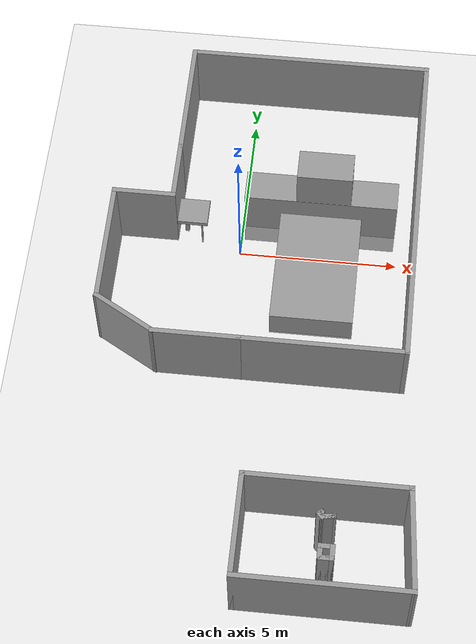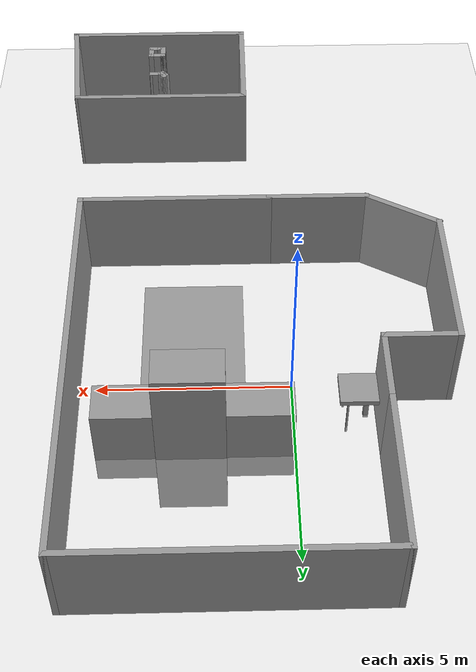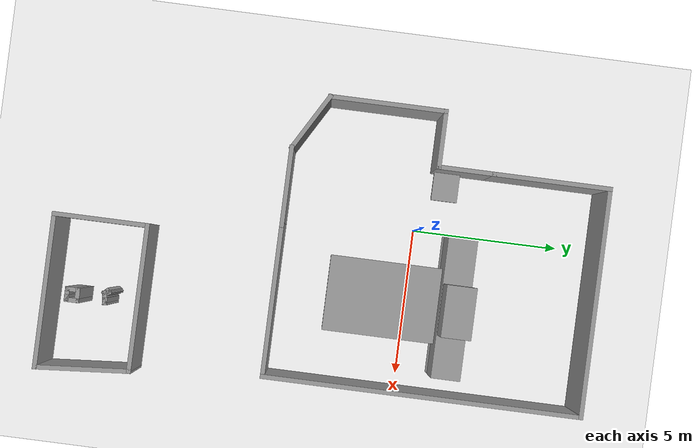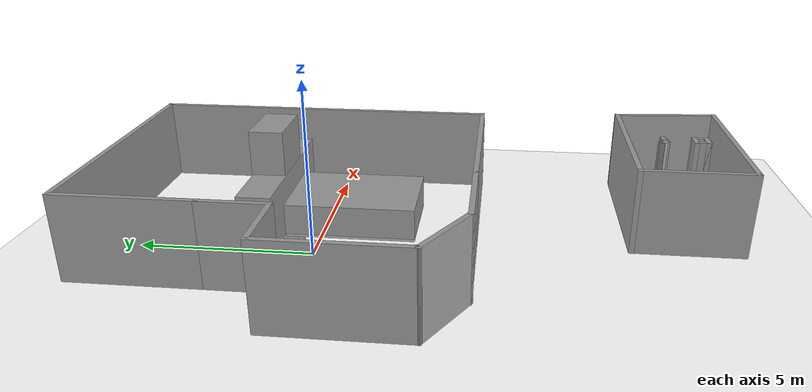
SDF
<sdf version="1.6">
 <world name="default">
  <light name="sun" type="directional">
   <pose>0 0 10 0 -0 0</pose>
   <diffuse>0.8 0.8 0.8 1</diffuse>
   <specular>0.2 0.2 0.2 1</specular>
   <attenuation>
    <range>1000</range>
    <constant>0.9</constant>
    <linear>0.01</linear>
    <quadratic>0.001</quadratic>
   </attenuation>
   <direction>-0.5 0.1 -0.9</direction>
  </light>
  <model name="ground_plane">
   <static>1</static>
   <link name="link">
    <collision name="collision">
     <geometry><plane><normal>0 0 1</normal><size>100 100</size></plane></geometry>
     <surface>
      <contact><collide_bitmask>65535</collide_bitmask></contact>
      <friction><ode><mu>100</mu><mu2>50</mu2></ode></friction>
     </surface>
    </collision>
    <visual name="visual">
     <cast_shadows>0</cast_shadows>
     <geometry><plane><normal>0 0 1</normal><size>100 100</size></plane></geometry>
     <material>
      <script><uri>file://media/materials/scripts/gazebo.material</uri><name>Gazebo/Grey</name></script>
     </material>
    </visual>
   </link>
  </model>
  <gravity>0 0 -9.8</gravity>
  <magnetic_field>6e-06 2.3e-05 -4.2e-05</magnetic_field>
  <atmosphere type="adiabatic"/>
  <physics name="default_physics" default="0" type="ode">
   <max_step_size>0.001</max_step_size>
   <real_time_factor>1</real_time_factor>
   <real_time_update_rate>1000</real_time_update_rate>
  </physics>
  <scene><ambient>0.4 0.4 0.4 1</ambient><background>0.7 0.7 0.7 1</background><shadows>1</shadows></scene>
  <spherical_coordinates>
   <surface_model>EARTH_WGS84</surface_model>
   <latitude_deg>0</latitude_deg>
   <longitude_deg>0</longitude_deg>
   <elevation>0</elevation>
   <heading_deg>0</heading_deg>
  </spherical_coordinates>
  <model name="sote_1.3">
   <link name="link_0">
    <inertial>
     <mass>0.016659</mass>
     <inertia>
      <ixx>0.00141362</ixx>
      <ixy>0</ixy>
      <ixz>0</ixz>
      <iyy>0.00140935</iyy>
      <iyz>0</iyz>
      <izz>4.647e-05</izz>
     </inertia>
    </inertial>
    <pose>-2.02582 0.010247 -0.068862 0 -0 0</pose>
    <self_collide>1</self_collide>
    <visual name="visual">
     <geometry><box><size>0.123282 0.135197 1</size></box></geometry>
     <material>
      <lighting>1</lighting>
      <script><uri>file://media/materials/scripts/gazebo.material</uri><name>Gazebo/Grey</name></script>
      <shader type="pixel"><normal_map>__default__</normal_map></shader>
      <emissive>0 0 0 1</emissive>
     </material>
    </visual>
    <collision name="collision">
     <geometry><box><size>0.123282 0.135197 1</size></box></geometry>
     <surface>
      <friction>
       <ode><mu>1</mu><mu2>1</mu2><fdir1>0 0 0</fdir1><slip1>0</slip1><slip2>0</slip2></ode>
       <torsional>
        <coefficient>1</coefficient>
        <patch_radius>0</patch_radius>
        <surface_radius>0</surface_radius>
        <use_patch_radius>1</use_patch_radius>
        <ode><slip>0</slip></ode>
       </torsional>
      </friction>
      <bounce><restitution_coefficient>0</restitution_coefficient><threshold>1e+06</threshold></bounce>
      <contact>
       <collide_without_contact>0</collide_without_contact>
       <collide_without_contact_bitmask>1</collide_without_contact_bitmask>
       <collide_bitmask>1</collide_bitmask>
       <ode>
        <soft_cfm>0</soft_cfm>
        <soft_erp>0.2</soft_erp>
        <kp>1e+13</kp>
        <kd>1</kd>
        <max_vel>0.01</max_vel>
        <min_depth>0</min_depth>
       </ode>
       <bullet>
        <split_impulse>1</split_impulse>
        <split_impulse_penetration_threshold>-0.01</split_impulse_penetration_threshold>
        <soft_cfm>0</soft_cfm>
        <soft_erp>0.2</soft_erp>
        <kp>1e+13</kp>
        <kd>1</kd>
       </bullet>
      </contact>
     </surface>
    </collision>
   </link>
   <link name="link_1">
    <inertial>
     <mass>0.133394</mass>
     <inertia>
      <ixx>0.00891643</ixx>
      <ixy>0</ixy>
      <ixz>0</ixz>
      <iyy>0.0115167</iyy>
      <iyz>0</iyz>
      <izz>0.0199326</izz>
     </inertia>
    </inertial>
    <pose>-1.81446 -0.00208 0.474498 0 -0 0</pose>
    <self_collide>1</self_collide>
    <visual name="visual">
     <geometry><box><size>1.00673 0.88295 0.15004</size></box></geometry>
     <material>
      <lighting>1</lighting>
      <script><uri>file://media/materials/scripts/gazebo.material</uri><name>Gazebo/Grey</name></script>
      <shader type="pixel"><normal_map>__default__</normal_map></shader>
      <emissive>0 0 0 1</emissive>
     </material>
    </visual>
    <collision name="collision">
     <geometry><box><size>1.00673 0.88295 0.15004</size></box></geometry>
     <surface>
      <friction>
       <ode><mu>1</mu><mu2>1</mu2><fdir1>0 0 0</fdir1><slip1>0</slip1><slip2>0</slip2></ode>
       <torsional>
        <coefficient>1</coefficient>
        <patch_radius>0</patch_radius>
        <surface_radius>0</surface_radius>
        <use_patch_radius>1</use_patch_radius>
        <ode><slip>0</slip></ode>
       </torsional>
      </friction>
      <bounce><restitution_coefficient>0</restitution_coefficient><threshold>1e+06</threshold></bounce>
      <contact>
       <collide_without_contact>0</collide_without_contact>
       <collide_without_contact_bitmask>1</collide_without_contact_bitmask>
       <collide_bitmask>1</collide_bitmask>
       <ode>
        <soft_cfm>0</soft_cfm>
        <soft_erp>0.2</soft_erp>
        <kp>1e+13</kp>
        <kd>1</kd>
        <max_vel>0.01</max_vel>
        <min_depth>0</min_depth>
       </ode>
       <bullet>
        <split_impulse>1</split_impulse>
        <split_impulse_penetration_threshold>-0.01</split_impulse_penetration_threshold>
        <soft_cfm>0</soft_cfm>
        <soft_erp>0.2</soft_erp>
        <kp>1e+13</kp>
        <kd>1</kd>
       </bullet>
      </contact>
     </surface>
    </collision>
   </link>
   <link name="link_2">
    <inertial>
     <mass>0.00298862</mass>
     <inertia>
      <ixx>0.00032573</ixx>
      <ixy>0</ixy>
      <ixz>0</ixz>
      <iyy>0.00032565</iyy>
      <iyz>0</iyz>
      <izz>1.3e-06</izz>
     </inertia>
    </inertial>
    <pose>-1.4954 -0.345618 -0.097495 0 -0 0</pose>
    <self_collide>1</self_collide>
    <visual name="visual">
     <geometry><box><size>0.049647 0.052664 1.14241</size></box></geometry>
     <material>
      <lighting>1</lighting>
      <script><uri>file://media/materials/scripts/gazebo.material</uri><name>Gazebo/Grey</name></script>
      <shader type="pixel"><normal_map>__default__</normal_map></shader>
      <emissive>0 0 0 1</emissive>
     </material>
    </visual>
    <collision name="collision">
     <geometry><box><size>0.049647 0.052664 1.14241</size></box></geometry>
     <surface>
      <friction>
       <ode><mu>1</mu><mu2>1</mu2><fdir1>0 0 0</fdir1><slip1>0</slip1><slip2>0</slip2></ode>
       <torsional>
        <coefficient>1</coefficient>
        <patch_radius>0</patch_radius>
        <surface_radius>0</surface_radius>
        <use_patch_radius>1</use_patch_radius>
        <ode><slip>0</slip></ode>
       </torsional>
      </friction>
      <bounce><restitution_coefficient>0</restitution_coefficient><threshold>1e+06</threshold></bounce>
      <contact>
       <collide_without_contact>0</collide_without_contact>
       <collide_without_contact_bitmask>1</collide_without_contact_bitmask>
       <collide_bitmask>1</collide_bitmask>
       <ode>
        <soft_cfm>0</soft_cfm>
        <soft_erp>0.2</soft_erp>
        <kp>1e+13</kp>
        <kd>1</kd>
        <max_vel>0.01</max_vel>
        <min_depth>0</min_depth>
       </ode>
       <bullet>
        <split_impulse>1</split_impulse>
        <split_impulse_penetration_threshold>-0.01</split_impulse_penetration_threshold>
        <soft_cfm>0</soft_cfm>
        <soft_erp>0.2</soft_erp>
        <kp>1e+13</kp>
        <kd>1</kd>
       </bullet>
      </contact>
     </surface>
    </collision>
   </link>
   <link name="link_2_clone">
    <inertial>
     <mass>0.00304918</mass>
     <inertia>
      <ixx>0.00034641</ixx>
      <ixy>0</ixy>
      <ixz>0</ixz>
      <iyy>0.00034634</iyy>
      <iyz>0</iyz>
      <izz>1.33e-06</izz>
     </inertia>
    </inertial>
    <pose>-1.51668 0.402224 -0.101554 0 -0 0</pose>
    <self_collide>1</self_collide>
    <visual name="visual">
     <geometry><box><size>0.049647 0.052664 1.16642</size></box></geometry>
     <material>
      <lighting>1</lighting>
      <script><uri>file://media/materials/scripts/gazebo.material</uri><name>Gazebo/Grey</name></script>
      <shader type="pixel"><normal_map>__default__</normal_map></shader>
      <emissive>0 0 0 1</emissive>
     </material>
    </visual>
    <collision name="collision">
     <geometry><box><size>0.049647 0.052664 1.16642</size></box></geometry>
     <surface>
      <friction>
       <ode><mu>1</mu><mu2>1</mu2><fdir1>0 0 0</fdir1><slip1>0</slip1><slip2>0</slip2></ode>
       <torsional>
        <coefficient>1</coefficient>
        <patch_radius>0</patch_radius>
        <surface_radius>0</surface_radius>
        <use_patch_radius>1</use_patch_radius>
        <ode><slip>0</slip></ode>
       </torsional>
      </friction>
      <bounce><restitution_coefficient>0</restitution_coefficient><threshold>1e+06</threshold></bounce>
      <contact>
       <collide_without_contact>0</collide_without_contact>
       <collide_without_contact_bitmask>1</collide_without_contact_bitmask>
       <collide_bitmask>1</collide_bitmask>
       <ode>
        <soft_cfm>0</soft_cfm>
        <soft_erp>0.2</soft_erp>
        <kp>1e+13</kp>
        <kd>1</kd>
        <max_vel>0.01</max_vel>
        <min_depth>0</min_depth>
       </ode>
       <bullet>
        <split_impulse>1</split_impulse>
        <split_impulse_penetration_threshold>-0.01</split_impulse_penetration_threshold>
        <soft_cfm>0</soft_cfm>
        <soft_erp>0.2</soft_erp>
        <kp>1e+13</kp>
        <kd>1</kd>
       </bullet>
      </contact>
     </surface>
    </collision>
   </link>
   <link name="link_3">
    <inertial>
     <mass>11.9259</mass>
     <inertia><ixx>6.99132</ixx><ixy>0</ixy><ixz>0</ixz><iyy>29.4194</iyy><iyz>0</iyz><izz>24.4157</izz></inertia>
    </inertial>
    <pose>2.2438 0.767971 -0.068862 0 -0 0</pose>
    <visual name="visual">
     <geometry><box><size>4.85463 1 2.45658</size></box></geometry>
     <material>
      <lighting>1</lighting>
      <script><uri>file://media/materials/scripts/gazebo.material</uri><name>Gazebo/Grey</name></script>
      <shader type="pixel"/>
     </material>
    </visual>
    <collision name="collision">
     <geometry><box><size>4.85463 1 2.45658</size></box></geometry>
     <surface>
      <friction>
       <ode><mu>1</mu><mu2>1</mu2><fdir1>0 0 0</fdir1><slip1>0</slip1><slip2>0</slip2></ode>
       <torsional>
        <coefficient>1</coefficient>
        <patch_radius>0</patch_radius>
        <surface_radius>0</surface_radius>
        <use_patch_radius>1</use_patch_radius>
        <ode><slip>0</slip></ode>
       </torsional>
      </friction>
      <bounce><restitution_coefficient>0</restitution_coefficient><threshold>1e+06</threshold></bounce>
      <contact>
       <collide_without_contact>0</collide_without_contact>
       <collide_without_contact_bitmask>1</collide_without_contact_bitmask>
       <collide_bitmask>1</collide_bitmask>
       <ode>
        <soft_cfm>0</soft_cfm>
        <soft_erp>0.2</soft_erp>
        <kp>1e+13</kp>
        <kd>1</kd>
        <max_vel>0.01</max_vel>
        <min_depth>0</min_depth>
       </ode>
       <bullet>
        <split_impulse>1</split_impulse>
        <split_impulse_penetration_threshold>-0.01</split_impulse_penetration_threshold>
        <soft_cfm>0</soft_cfm>
        <soft_erp>0.2</soft_erp>
        <kp>1e+13</kp>
        <kd>1</kd>
       </bullet>
      </contact>
     </surface>
    </collision>
   </link>
   <link name="link_4">
    <inertial>
     <mass>8.84152</mass>
     <inertia><ixx>19.8918</ixx><ixy>0</ixy><ixz>0</ixz><iyy>21.3705</iyy><iyz>0</iyz><izz>2.95229</izz></inertia>
    </inertial>
    <pose>2.33451 0.794438 -0.068862 0 -0 0</pose>
    <visual name="visual">
     <geometry><box><size>1.73405 1 5.0988</size></box></geometry>
     <material>
      <lighting>1</lighting>
      <script><uri>file://media/materials/scripts/gazebo.material</uri><name>Gazebo/Grey</name></script>
      <shader type="pixel"/>
     </material>
    </visual>
    <collision name="collision">
     <geometry><box><size>1.73405 1 5.0988</size></box></geometry>
     <surface>
      <friction>
       <ode><mu>1</mu><mu2>1</mu2><fdir1>0 0 0</fdir1><slip1>0</slip1><slip2>0</slip2></ode>
       <torsional>
        <coefficient>1</coefficient>
        <patch_radius>0</patch_radius>
        <surface_radius>0</surface_radius>
        <use_patch_radius>1</use_patch_radius>
        <ode><slip>0</slip></ode>
       </torsional>
      </friction>
      <bounce><restitution_coefficient>0</restitution_coefficient><threshold>1e+06</threshold></bounce>
      <contact>
       <collide_without_contact>0</collide_without_contact>
       <collide_without_contact_bitmask>1</collide_without_contact_bitmask>
       <collide_bitmask>1</collide_bitmask>
       <ode>
        <soft_cfm>0</soft_cfm>
        <soft_erp>0.2</soft_erp>
        <kp>1e+13</kp>
        <kd>1</kd>
        <max_vel>0.01</max_vel>
        <min_depth>0</min_depth>
       </ode>
       <bullet>
        <split_impulse>1</split_impulse>
        <split_impulse_penetration_threshold>-0.01</split_impulse_penetration_threshold>
        <soft_cfm>0</soft_cfm>
        <soft_erp>0.2</soft_erp>
        <kp>1e+13</kp>
        <kd>1</kd>
       </bullet>
      </contact>
     </surface>
    </collision>
   </link>
   <link name="link_5">
    <inertial>
     <mass>10.0896</mass>
     <inertia><ixx>13.5916</ixx><ixy>0</ixy><ixz>0</ixz><iyy>6.48448</iyy><iyz>0</iyz><izz>18.3945</izz></inertia>
    </inertial>
    <pose>2.27405 -1.62718 -0.068862 0 -0 0</pose>
    <visual name="visual">
     <geometry><box><size>2.59081 3.89424 1</size></box></geometry>
     <material>
      <lighting>1</lighting>
      <script><uri>file://media/materials/scripts/gazebo.material</uri><name>Gazebo/Grey</name></script>
      <shader type="pixel"/>
     </material>
    </visual>
    <collision name="collision">
     <geometry><box><size>2.59081 3.89424 1</size></box></geometry>
     <surface>
      <friction>
       <ode><mu>1</mu><mu2>1</mu2><fdir1>0 0 0</fdir1><slip1>0</slip1><slip2>0</slip2></ode>
       <torsional>
        <coefficient>1</coefficient>
        <patch_radius>0</patch_radius>
        <surface_radius>0</surface_radius>
        <use_patch_radius>1</use_patch_radius>
        <ode><slip>0</slip></ode>
       </torsional>
      </friction>
      <bounce><restitution_coefficient>0</restitution_coefficient><threshold>1e+06</threshold></bounce>
      <contact>
       <collide_without_contact>0</collide_without_contact>
       <collide_without_contact_bitmask>1</collide_without_contact_bitmask>
       <collide_bitmask>1</collide_bitmask>
       <ode>
        <soft_cfm>0</soft_cfm>
        <soft_erp>0.2</soft_erp>
        <kp>1e+13</kp>
        <kd>1</kd>
        <max_vel>0.01</max_vel>
        <min_depth>0</min_depth>
       </ode>
       <bullet>
        <split_impulse>1</split_impulse>
        <split_impulse_penetration_threshold>-0.01</split_impulse_penetration_threshold>
        <soft_cfm>0</soft_cfm>
        <soft_erp>0.2</soft_erp>
        <kp>1e+13</kp>
        <kd>1</kd>
       </bullet>
      </contact>
     </surface>
    </collision>
   </link>
   <joint name="link_1_JOINT_0" type="fixed">
    <parent>link_1</parent>
    <child>link_0</child>
    <physics>
     <ode><limit><cfm>0</cfm><erp>0.2</erp></limit><suspension><cfm>0</cfm><erp>0.2</erp></suspension></ode>
    </physics>
   </joint>
   <joint name="link_1_JOINT_1" type="fixed">
    <parent>link_1</parent>
    <child>link_2</child>
    <physics>
     <ode><limit><cfm>0</cfm><erp>0.2</erp></limit><suspension><cfm>0</cfm><erp>0.2</erp></suspension></ode>
    </physics>
   </joint>
   <joint name="link_1_JOINT_2" type="fixed">
    <parent>link_1</parent>
    <child>link_2_clone</child>
    <physics>
     <ode><limit><cfm>0</cfm><erp>0.2</erp></limit><suspension><cfm>0</cfm><erp>0.2</erp></suspension></ode>
    </physics>
   </joint>
   <static>0</static>
   <pose>0.21653 0.841785 0.467495 0 -0 0</pose>
  </model>
  <model name="Korhaz_1">
   <pose>1.06574 -2.93788 0 0 -0 0</pose>
   <link name="Wall_20">
    <collision name="Wall_20_Collision">
     <geometry><box><size>2.75 0.15 2.5</size></box></geometry>
     <pose>0 0 1.25 0 -0 0</pose>
    </collision>
    <visual name="Wall_20_Visual">
     <pose>0 0 1.25 0 -0 0</pose>
     <geometry><box><size>2.75 0.15 2.5</size></box></geometry>
     <material>
      <script><uri>file://media/materials/scripts/gazebo.material</uri><name>Gazebo/Grey</name></script>
      <ambient>1 1 1 1</ambient>
     </material>
     <meta><layer>0</layer></meta>
    </visual>
    <pose>-1.91983 -1.54931 0 0 -0 3.14159</pose>
   </link>
   <link name="Wall_21">
    <collision name="Wall_21_Collision">
     <geometry><box><size>2.25 0.15 2.5</size></box></geometry>
     <pose>0 0 1.25 0 -0 0</pose>
    </collision>
    <visual name="Wall_21_Visual">
     <pose>0 0 1.25 0 -0 0</pose>
     <geometry><box><size>2.25 0.15 2.5</size></box></geometry>
     <material>
      <script><uri>file://media/materials/scripts/gazebo.material</uri><name>Gazebo/Grey</name></script>
      <ambient>1 1 1 1</ambient>
     </material>
     <meta><layer>0</layer></meta>
    </visual>
    <pose>-4.12915 -1.02432 0 0 -0 2.61799</pose>
   </link>
   <link name="Wall_24">
    <collision name="Wall_24_Collision">
     <geometry><box><size>4 0.15 2.5</size></box></geometry>
     <pose>0 0 1.25 0 -0 0</pose>
    </collision>
    <visual name="Wall_24_Visual">
     <pose>0 0 1.25 0 -0 0</pose>
     <geometry><box><size>4 0.15 2.5</size></box></geometry>
     <material>
      <script><uri>file://media/materials/scripts/gazebo.material</uri><name>Gazebo/Grey</name></script>
      <ambient>1 1 1 1</ambient>
     </material>
     <meta><layer>0</layer></meta>
    </visual>
    <pose>-5.03848 1.42569 0 0 -0 1.5708</pose>
   </link>
   <link name="Wall_26">
    <collision name="Wall_26_Collision">
     <geometry><box><size>2 0.15 2.5</size></box></geometry>
     <pose>0 0 1.25 0 -0 0</pose>
    </collision>
    <visual name="Wall_26_Visual">
     <pose>0 0 1.25 0 -0 0</pose>
     <geometry><box><size>2 0.15 2.5</size></box></geometry>
     <material>
      <script><uri>file://media/materials/scripts/gazebo.material</uri><name>Gazebo/Grey</name></script>
      <ambient>1 1 1 1</ambient>
     </material>
     <meta><layer>0</layer></meta>
    </visual>
    <pose>-4.11348 3.35068 0 0 -0 0</pose>
   </link>
   <link name="Wall_27">
    <collision name="Wall_27_Collision">
     <geometry><box><size>2 0.15 2.5</size></box></geometry>
     <pose>0 0 1.25 0 -0 0</pose>
    </collision>
    <visual name="Wall_27_Visual">
     <pose>0 0 1.25 0 -0 0</pose>
     <geometry><box><size>2 0.15 2.5</size></box></geometry>
     <material>
      <script><uri>file://media/materials/scripts/gazebo.material</uri><name>Gazebo/Grey</name></script>
      <ambient>1 1 1 1</ambient>
     </material>
     <meta><layer>0</layer></meta>
    </visual>
    <pose>-3.18848 4.27569 0 0 -0 1.5708</pose>
   </link>
   <link name="Wall_29">
    <collision name="Wall_29_Collision">
     <geometry><box><size>4 0.15 2.5</size></box></geometry>
     <pose>0 0 1.25 0 -0 0</pose>
    </collision>
    <visual name="Wall_29_Visual">
     <pose>0 0 1.25 0 -0 0</pose>
     <geometry><box><size>4 0.15 2.5</size></box></geometry>
     <material>
      <script><uri>file://media/materials/scripts/gazebo.material</uri><name>Gazebo/Grey</name></script>
      <ambient>1 1 1 1</ambient>
     </material>
     <meta><layer>0</layer></meta>
    </visual>
    <pose>-3.18848 7.12568 0 0 -0 1.5708</pose>
   </link>
   <link name="Wall_30">
    <collision name="Wall_30_Collision">
     <geometry><box><size>7.75 0.15 2.5</size></box></geometry>
     <pose>0 0 1.25 0 -0 0</pose>
    </collision>
    <visual name="Wall_30_Visual">
     <pose>0 0 1.25 0 -0 0</pose>
     <geometry><box><size>7.75 0.15 2.5</size></box></geometry>
     <material>
      <script><uri>file://media/materials/scripts/gazebo.material</uri><name>Gazebo/Grey</name></script>
      <ambient>1 1 1 1</ambient>
     </material>
     <meta><layer>0</layer></meta>
    </visual>
    <pose>0.61152 9.05068 0 0 -0 0</pose>
   </link>
   <link name="Wall_31">
    <collision name="Wall_31_Collision">
     <geometry><box><size>10.75 0.15 2.5</size></box></geometry>
     <pose>0 0 1.25 0 -0 0</pose>
    </collision>
    <visual name="Wall_31_Visual">
     <pose>0 0 1.25 0 -0 0</pose>
     <geometry><box><size>10.75 0.15 2.5</size></box></geometry>
     <material>
      <script><uri>file://media/materials/scripts/gazebo.material</uri><name>Gazebo/Grey</name></script>
      <ambient>1 1 1 1</ambient>
     </material>
     <meta><layer>0</layer></meta>
    </visual>
    <pose>4.41152 3.75068 0 0 -0 -1.5708</pose>
   </link>
   <link name="Wall_32">
    <collision name="Wall_32_Collision">
     <geometry><box><size>5.18135 0.15 2.5</size></box></geometry>
     <pose>0 0 1.25 0 -0 0</pose>
    </collision>
    <visual name="Wall_32_Visual">
     <pose>0 0 1.25 0 -0 0</pose>
     <geometry><box><size>5.18135 0.15 2.5</size></box></geometry>
     <material>
      <script><uri>file://media/materials/scripts/gazebo.material</uri><name>Gazebo/Grey</name></script>
      <ambient>1 1 1 1</ambient>
     </material>
     <meta><layer>0</layer></meta>
    </visual>
    <pose>1.89585 -1.54931 0 0 -0 3.14159</pose>
   </link>
   <link name="Wall_34">
    <collision name="Wall_34_Collision">
     <geometry><box><size>5 0.15 2.5</size></box></geometry>
     <pose>0 0 1.25 0 -0 0</pose>
    </collision>
    <visual name="Wall_34_Visual">
     <pose>0 0 1.25 0 -0 0</pose>
     <geometry><box><size>5 0.15 2.5</size></box></geometry>
     <material>
      <script><uri>file://media/materials/scripts/gazebo.material</uri><name>Gazebo/Grey</name></script>
      <ambient>1 1 1 1</ambient>
     </material>
     <meta><layer>0</layer></meta>
    </visual>
    <pose>2.38515 -5.9449 0 0 -0 3.14159</pose>
   </link>
   <link name="Wall_36">
    <collision name="Wall_36_Collision">
     <geometry><box><size>3.25 0.15 2.5</size></box></geometry>
     <pose>0 0 1.25 0 -0 0</pose>
    </collision>
    <visual name="Wall_36_Visual">
     <pose>0 0 1.25 0 -0 0</pose>
     <geometry><box><size>3.25 0.15 2.5</size></box></geometry>
     <material>
      <script><uri>file://media/materials/scripts/gazebo.material</uri><name>Gazebo/Grey</name></script>
      <ambient>1 1 1 1</ambient>
     </material>
     <meta><layer>0</layer></meta>
    </visual>
    <pose>-0.039854 -7.4949 0 0 -0 -1.5708</pose>
   </link>
   <link name="Wall_38">
    <collision name="Wall_38_Collision">
     <geometry><box><size>5.25 0.15 2.5</size></box></geometry>
     <pose>0 0 1.25 0 -0 0</pose>
    </collision>
    <visual name="Wall_38_Visual">
     <pose>0 0 1.25 0 -0 0</pose>
     <geometry><box><size>5.25 0.15 2.5</size></box></geometry>
     <material>
      <script><uri>file://media/materials/scripts/gazebo.material</uri><name>Gazebo/Grey</name></script>
      <ambient>1 1 1 1</ambient>
     </material>
     <meta><layer>0</layer></meta>
    </visual>
    <pose>2.51015 -9.0449 0 0 -0 0</pose>
   </link>
   <link name="Wall_39">
    <collision name="Wall_39_Collision">
     <geometry><box><size>3.26006 0.15 2.5</size></box></geometry>
     <pose>0 0 1.25 0 -0 0</pose>
    </collision>
    <visual name="Wall_39_Visual">
     <pose>0 0 1.25 0 -0 0</pose>
     <geometry><box><size>3.26006 0.15 2.5</size></box></geometry>
     <material>
      <script><uri>file://media/materials/scripts/gazebo.material</uri><name>Gazebo/Grey</name></script>
      <ambient>1 1 1 1</ambient>
     </material>
     <meta><layer>0</layer></meta>
    </visual>
    <pose>4.93515 -7.4949 0 0 -0 1.65127</pose>
   </link>
   <link name="Wall_41">
    <collision name="Wall_41_Collision">
     <geometry><box><size>0.25 0.15 2.5</size></box></geometry>
     <pose>0 0 1.25 0 -0 0</pose>
    </collision>
    <visual name="Wall_41_Visual">
     <pose>0 0 1.25 0 -0 0</pose>
     <geometry><box><size>0.25 0.15 2.5</size></box></geometry>
     <material>
      <script><uri>file://media/materials/scripts/gazebo.material</uri><name>Gazebo/Grey</name></script>
      <ambient>1 1 1 1</ambient>
     </material>
     <meta><layer>0</layer></meta>
    </visual>
    <pose>2.66726 -8.29023 0 0 -0 0</pose>
   </link>
   <link name="Wall_42">
    <collision name="Wall_42_Collision">
     <geometry><box><size>0.5 0.15 2.5</size></box></geometry>
     <pose>0 0 1.25 0 -0 0</pose>
    </collision>
    <visual name="Wall_42_Visual">
     <pose>0 0 1.25 0 -0 0</pose>
     <geometry><box><size>0.5 0.15 2.5</size></box></geometry>
     <material>
      <script><uri>file://media/materials/scripts/gazebo.material</uri><name>Gazebo/Grey</name></script>
      <ambient>1 1 1 1</ambient>
     </material>
     <meta><layer>0</layer></meta>
    </visual>
    <pose>2.71726 -8.11523 0 0 -0 1.5708</pose>
   </link>
   <link name="Wall_43">
    <collision name="Wall_43_Collision">
     <geometry><box><size>0.5 0.15 2.5</size></box></geometry>
     <pose>0 0 1.25 0 -0 0</pose>
    </collision>
    <visual name="Wall_43_Visual">
     <pose>0 0 1.25 0 -0 0</pose>
     <geometry><box><size>0.5 0.15 2.5</size></box></geometry>
     <material>
      <script><uri>file://media/materials/scripts/gazebo.material</uri><name>Gazebo/Grey</name></script>
      <ambient>1 1 1 1</ambient>
     </material>
     <meta><layer>0</layer></meta>
    </visual>
    <pose>2.54226 -7.94023 0 0 -0 3.14159</pose>
   </link>
   <link name="Wall_44">
    <collision name="Wall_44_Collision">
     <geometry><box><size>0.5 0.15 2.5</size></box></geometry>
     <pose>0 0 1.25 0 -0 0</pose>
    </collision>
    <visual name="Wall_44_Visual">
     <pose>0 0 1.25 0 -0 0</pose>
     <geometry><box><size>0.5 0.15 2.5</size></box></geometry>
     <material>
      <script><uri>file://media/materials/scripts/gazebo.material</uri><name>Gazebo/Grey</name></script>
      <ambient>1 1 1 1</ambient>
     </material>
     <meta><layer>0</layer></meta>
    </visual>
    <pose>2.36726 -8.11523 0 0 -0 -1.5708</pose>
   </link>
   <link name="Wall_45">
    <collision name="Wall_45_Collision">
     <geometry><box><size>0.5 0.15 2.5</size></box></geometry>
     <pose>0 0 1.25 0 -0 0</pose>
    </collision>
    <visual name="Wall_45_Visual">
     <pose>0 0 1.25 0 -0 0</pose>
     <geometry><box><size>0.5 0.15 2.5</size></box></geometry>
     <material>
      <script><uri>file://media/materials/scripts/gazebo.material</uri><name>Gazebo/Grey</name></script>
      <ambient>1 1 1 1</ambient>
     </material>
     <meta><layer>0</layer></meta>
    </visual>
    <pose>2.54226 -8.29023 0 0 -0 0</pose>
   </link>
   <link name="Wall_47">
    <collision name="Wall_47_Collision">
     <geometry><box><size>0.25 0.15 2.5</size></box></geometry>
     <pose>0 0 1.25 0 -0 0</pose>
    </collision>
    <visual name="Wall_47_Visual">
     <pose>0 0 1.25 0 -0 0</pose>
     <geometry><box><size>0.25 0.15 2.5</size></box></geometry>
     <material>
      <script><uri>file://media/materials/scripts/gazebo.material</uri><name>Gazebo/Grey</name></script>
      <ambient>1 1 1 1</ambient>
     </material>
     <meta><layer>0</layer></meta>
    </visual>
    <pose>2.61436 -7.02064 0 0 -0 0</pose>
   </link>
   <link name="Wall_48">
    <collision name="Wall_48_Collision">
     <geometry><box><size>0.469755 0.15 2.5</size></box></geometry>
     <pose>0 0 1.25 0 -0 0</pose>
    </collision>
    <visual name="Wall_48_Visual">
     <pose>0 0 1.25 0 -0 0</pose>
     <geometry><box><size>0.469755 0.15 2.5</size></box></geometry>
     <material>
      <script><uri>file://media/materials/scripts/gazebo.material</uri><name>Gazebo/Grey</name></script>
      <ambient>1 1 1 1</ambient>
     </material>
     <meta><layer>0</layer></meta>
    </visual>
    <pose>2.50602 -7.04279 0 0 -0 -3.00259</pose>
   </link>
   <link name="Wall_49">
    <collision name="Wall_49_Collision">
     <geometry><box><size>0.298102 0.15 2.5</size></box></geometry>
     <pose>0 0 1.25 0 -0 0</pose>
    </collision>
    <visual name="Wall_49_Visual">
     <pose>0 0 1.25 0 -0 0</pose>
     <geometry><box><size>0.298102 0.15 2.5</size></box></geometry>
     <material>
      <script><uri>file://media/materials/scripts/gazebo.material</uri><name>Gazebo/Grey</name></script>
      <ambient>1 1 1 1</ambient>
     </material>
     <meta><layer>0</layer></meta>
    </visual>
    <pose>2.33102 -6.99279 0 0 -0 1.79778</pose>
   </link>
   <link name="Wall_50">
    <collision name="Wall_50_Collision">
     <geometry><box><size>0.220349 0.15 2.5</size></box></geometry>
     <pose>0 0 1.25 0 -0 0</pose>
    </collision>
    <visual name="Wall_50_Visual">
     <pose>0 0 1.25 0 -0 0</pose>
     <geometry><box><size>0.220349 0.15 2.5</size></box></geometry>
     <material>
      <script><uri>file://media/materials/scripts/gazebo.material</uri><name>Gazebo/Grey</name></script>
      <ambient>1 1 1 1</ambient>
     </material>
     <meta><layer>0</layer></meta>
    </visual>
    <pose>2.28992 -6.94593 0 0 -0 -2.339</pose>
   </link>
   <link name="Wall_51">
    <collision name="Wall_51_Collision">
     <geometry><box><size>0.25 0.15 2.5</size></box></geometry>
     <pose>0 0 1.25 0 -0 0</pose>
    </collision>
    <visual name="Wall_51_Visual">
     <pose>0 0 1.25 0 -0 0</pose>
     <geometry><box><size>0.25 0.15 2.5</size></box></geometry>
     <material>
      <script><uri>file://media/materials/scripts/gazebo.material</uri><name>Gazebo/Grey</name></script>
      <ambient>1 1 1 1</ambient>
     </material>
     <meta><layer>0</layer></meta>
    </visual>
    <pose>2.31233 -7.02958 0 0 -0 -0.785398</pose>
   </link>
   <static>1</static>
  </model>
 </world>
</sdf>
